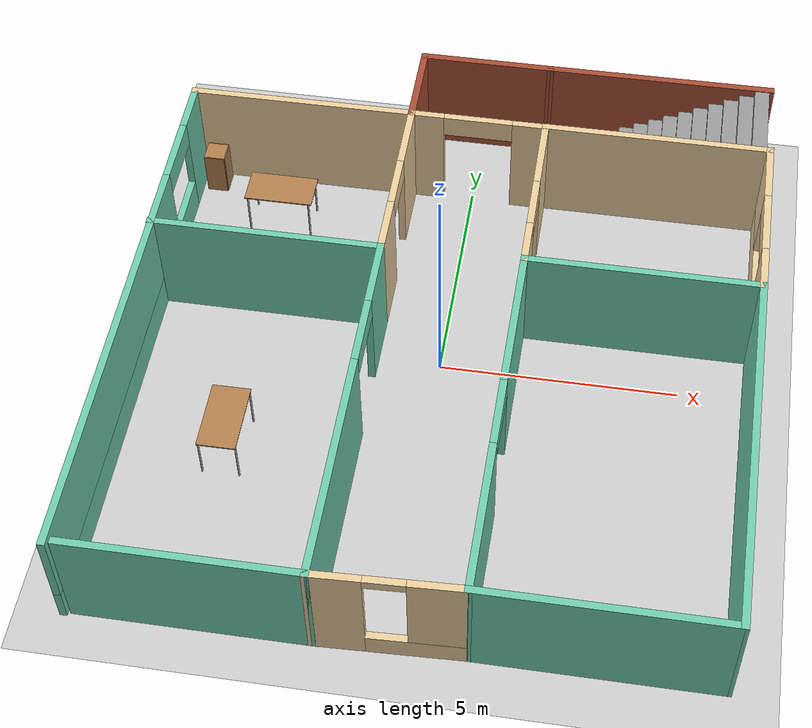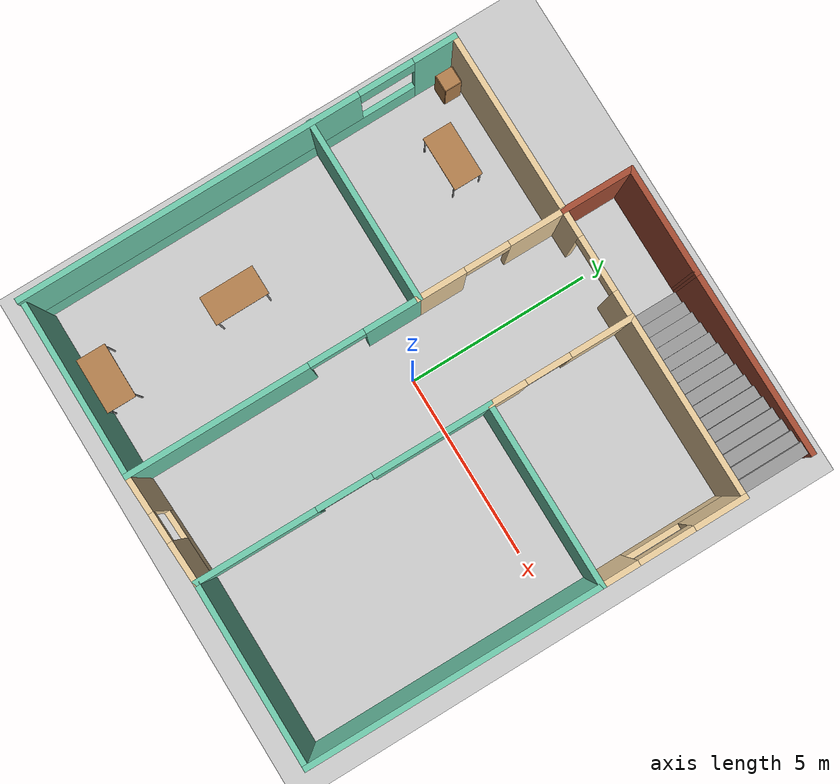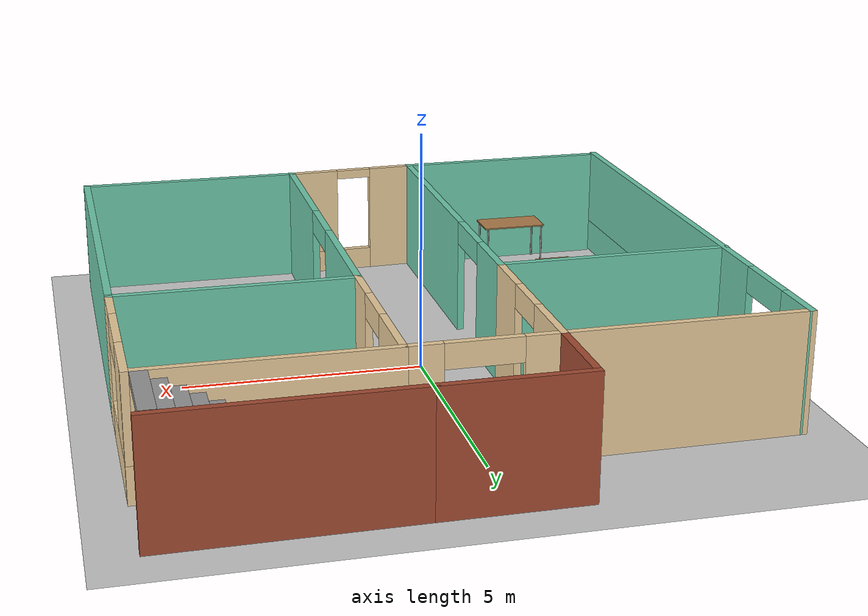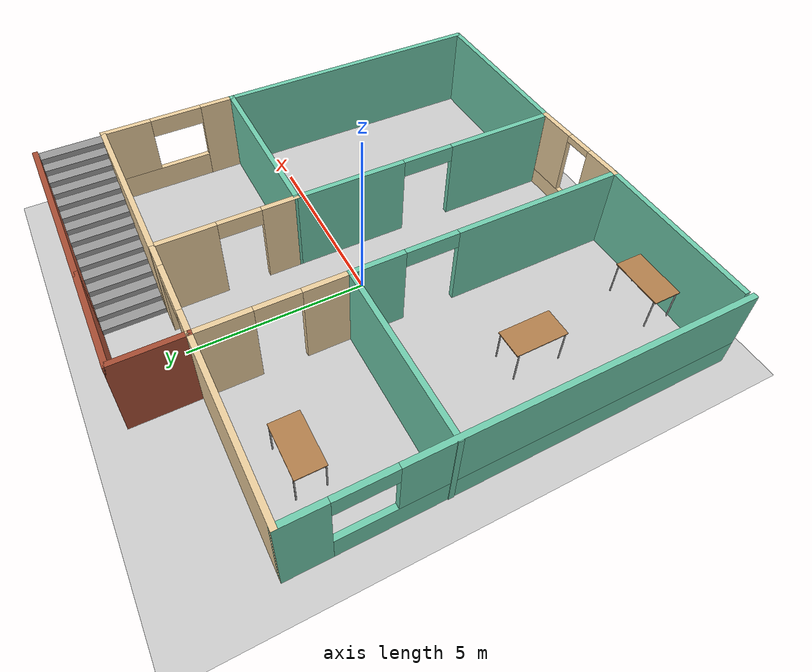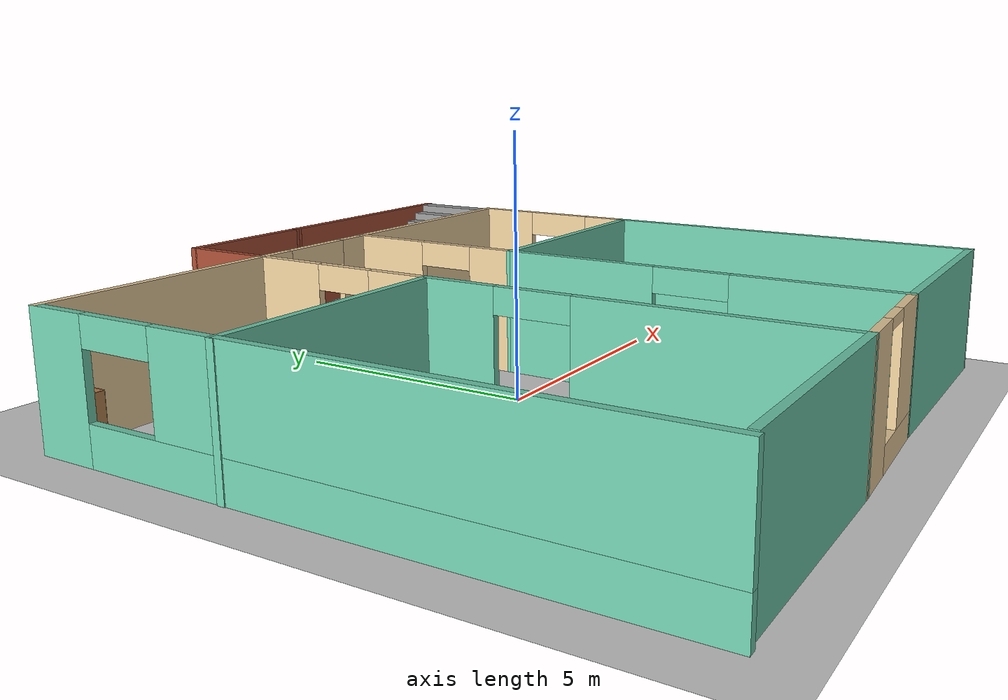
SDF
<sdf version="1.6">
 <world name="default">
  <model name="ground_plane">
   <static>1</static>
   <link name="link">
    <collision name="collision">
     <geometry><plane><normal>0 0 1</normal><size>100 100</size></plane></geometry>
     <surface><friction><ode><mu>100</mu><mu2>50</mu2></ode></friction></surface>
    </collision>
    <visual name="visual">
     <cast_shadows>0</cast_shadows>
     <geometry><plane><normal>0 0 1</normal><size>100 100</size></plane></geometry>
     <material>
      <script><uri>file://media/materials/scripts/gazebo.material</uri><name>Gazebo/Grey</name></script>
     </material>
    </visual>
   </link>
  </model>
  <model name="building">
   <pose>0.088523 -0.033971 0 0 -0 0</pose>
   <link name="Stairs_0">
    <visual name="Stairs_0_Visual_0">
     <pose>1.59394 5.92691 0.083333 0 -0 1.5708</pose>
     <geometry><box><size>1.7 0.320986 0.166667</size></box></geometry>
     <material>
      <script><uri>file://media/materials/scripts/gazebo.material</uri><name>Gazebo/Grey</name></script>
      <ambient>1 1 1 1</ambient>
     </material>
     <meta><layer>0</layer></meta>
    </visual>
    <collision name="Stairs_0_Collision_0">
     <geometry><box><size>1.7 0.320986 0.166667</size></box></geometry>
     <pose>1.59394 5.92691 0.083333 0 -0 1.5708</pose>
    </collision>
    <visual name="Stairs_0_Visual_1">
     <pose>1.91492 5.92691 0.25 0 -0 1.5708</pose>
     <geometry><box><size>1.7 0.320986 0.166667</size></box></geometry>
     <material>
      <script><uri>file://media/materials/scripts/gazebo.material</uri><name>Gazebo/Grey</name></script>
      <ambient>1 1 1 1</ambient>
     </material>
     <meta><layer>0</layer></meta>
    </visual>
    <collision name="Stairs_0_Collision_1">
     <geometry><box><size>1.7 0.320986 0.166667</size></box></geometry>
     <pose>1.91492 5.92691 0.25 0 -0 1.5708</pose>
    </collision>
    <visual name="Stairs_0_Visual_2">
     <pose>2.23591 5.92691 0.416667 0 -0 1.5708</pose>
     <geometry><box><size>1.7 0.320986 0.166667</size></box></geometry>
     <material>
      <script><uri>file://media/materials/scripts/gazebo.material</uri><name>Gazebo/Grey</name></script>
      <ambient>1 1 1 1</ambient>
     </material>
     <meta><layer>0</layer></meta>
    </visual>
    <collision name="Stairs_0_Collision_2">
     <geometry><box><size>1.7 0.320986 0.166667</size></box></geometry>
     <pose>2.23591 5.92691 0.416667 0 -0 1.5708</pose>
    </collision>
    <visual name="Stairs_0_Visual_3">
     <pose>2.55689 5.92691 0.583333 0 -0 1.5708</pose>
     <geometry><box><size>1.7 0.320986 0.166667</size></box></geometry>
     <material>
      <script><uri>file://media/materials/scripts/gazebo.material</uri><name>Gazebo/Grey</name></script>
      <ambient>1 1 1 1</ambient>
     </material>
     <meta><layer>0</layer></meta>
    </visual>
    <collision name="Stairs_0_Collision_3">
     <geometry><box><size>1.7 0.320986 0.166667</size></box></geometry>
     <pose>2.55689 5.92691 0.583333 0 -0 1.5708</pose>
    </collision>
    <visual name="Stairs_0_Visual_4">
     <pose>2.87788 5.92691 0.75 0 -0 1.5708</pose>
     <geometry><box><size>1.7 0.320986 0.166667</size></box></geometry>
     <material>
      <script><uri>file://media/materials/scripts/gazebo.material</uri><name>Gazebo/Grey</name></script>
      <ambient>1 1 1 1</ambient>
     </material>
     <meta><layer>0</layer></meta>
    </visual>
    <collision name="Stairs_0_Collision_4">
     <geometry><box><size>1.7 0.320986 0.166667</size></box></geometry>
     <pose>2.87788 5.92691 0.75 0 -0 1.5708</pose>
    </collision>
    <visual name="Stairs_0_Visual_5">
     <pose>3.19887 5.92691 0.916667 0 -0 1.5708</pose>
     <geometry><box><size>1.7 0.320986 0.166667</size></box></geometry>
     <material>
      <script><uri>file://media/materials/scripts/gazebo.material</uri><name>Gazebo/Grey</name></script>
      <ambient>1 1 1 1</ambient>
     </material>
     <meta><layer>0</layer></meta>
    </visual>
    <collision name="Stairs_0_Collision_5">
     <geometry><box><size>1.7 0.320986 0.166667</size></box></geometry>
     <pose>3.19887 5.92691 0.916667 0 -0 1.5708</pose>
    </collision>
    <visual name="Stairs_0_Visual_6">
     <pose>3.51985 5.92691 1.08333 0 -0 1.5708</pose>
     <geometry><box><size>1.7 0.320986 0.166667</size></box></geometry>
     <material>
      <script><uri>file://media/materials/scripts/gazebo.material</uri><name>Gazebo/Grey</name></script>
      <ambient>1 1 1 1</ambient>
     </material>
     <meta><layer>0</layer></meta>
    </visual>
    <collision name="Stairs_0_Collision_6">
     <geometry><box><size>1.7 0.320986 0.166667</size></box></geometry>
     <pose>3.51985 5.92691 1.08333 0 -0 1.5708</pose>
    </collision>
    <visual name="Stairs_0_Visual_7">
     <pose>3.84084 5.92691 1.25 0 -0 1.5708</pose>
     <geometry><box><size>1.7 0.320986 0.166667</size></box></geometry>
     <material>
      <script><uri>file://media/materials/scripts/gazebo.material</uri><name>Gazebo/Grey</name></script>
      <ambient>1 1 1 1</ambient>
     </material>
     <meta><layer>0</layer></meta>
    </visual>
    <collision name="Stairs_0_Collision_7">
     <geometry><box><size>1.7 0.320986 0.166667</size></box></geometry>
     <pose>3.84084 5.92691 1.25 0 -0 1.5708</pose>
    </collision>
    <visual name="Stairs_0_Visual_8">
     <pose>4.16182 5.92691 1.41667 0 -0 1.5708</pose>
     <geometry><box><size>1.7 0.320986 0.166667</size></box></geometry>
     <material>
      <script><uri>file://media/materials/scripts/gazebo.material</uri><name>Gazebo/Grey</name></script>
      <ambient>1 1 1 1</ambient>
     </material>
     <meta><layer>0</layer></meta>
    </visual>
    <collision name="Stairs_0_Collision_8">
     <geometry><box><size>1.7 0.320986 0.166667</size></box></geometry>
     <pose>4.16182 5.92691 1.41667 0 -0 1.5708</pose>
    </collision>
    <visual name="Stairs_0_Visual_9">
     <pose>4.48281 5.92691 1.58333 0 -0 1.5708</pose>
     <geometry><box><size>1.7 0.320986 0.166667</size></box></geometry>
     <material>
      <script><uri>file://media/materials/scripts/gazebo.material</uri><name>Gazebo/Grey</name></script>
      <ambient>1 1 1 1</ambient>
     </material>
     <meta><layer>0</layer></meta>
    </visual>
    <collision name="Stairs_0_Collision_9">
     <geometry><box><size>1.7 0.320986 0.166667</size></box></geometry>
     <pose>4.48281 5.92691 1.58333 0 -0 1.5708</pose>
    </collision>
    <visual name="Stairs_0_Visual_10">
     <pose>4.8038 5.92691 1.75 0 -0 1.5708</pose>
     <geometry><box><size>1.7 0.320986 0.166667</size></box></geometry>
     <material>
      <script><uri>file://media/materials/scripts/gazebo.material</uri><name>Gazebo/Grey</name></script>
      <ambient>1 1 1 1</ambient>
     </material>
     <meta><layer>0</layer></meta>
    </visual>
    <collision name="Stairs_0_Collision_10">
     <geometry><box><size>1.7 0.320986 0.166667</size></box></geometry>
     <pose>4.8038 5.92691 1.75 0 -0 1.5708</pose>
    </collision>
    <visual name="Stairs_0_Visual_11">
     <pose>5.12478 5.92691 1.91667 0 -0 1.5708</pose>
     <geometry><box><size>1.7 0.320986 0.166667</size></box></geometry>
     <material>
      <script><uri>file://media/materials/scripts/gazebo.material</uri><name>Gazebo/Grey</name></script>
      <ambient>1 1 1 1</ambient>
     </material>
     <meta><layer>0</layer></meta>
    </visual>
    <collision name="Stairs_0_Collision_11">
     <geometry><box><size>1.7 0.320986 0.166667</size></box></geometry>
     <pose>5.12478 5.92691 1.91667 0 -0 1.5708</pose>
    </collision>
    <visual name="Stairs_0_Visual_12">
     <pose>5.44577 5.92691 2.08333 0 -0 1.5708</pose>
     <geometry><box><size>1.7 0.320986 0.166667</size></box></geometry>
     <material>
      <script><uri>file://media/materials/scripts/gazebo.material</uri><name>Gazebo/Grey</name></script>
      <ambient>1 1 1 1</ambient>
     </material>
     <meta><layer>0</layer></meta>
    </visual>
    <collision name="Stairs_0_Collision_12">
     <geometry><box><size>1.7 0.320986 0.166667</size></box></geometry>
     <pose>5.44577 5.92691 2.08333 0 -0 1.5708</pose>
    </collision>
    <visual name="Stairs_0_Visual_13">
     <pose>5.76675 5.92691 2.25 0 -0 1.5708</pose>
     <geometry><box><size>1.7 0.320986 0.166667</size></box></geometry>
     <material>
      <script><uri>file://media/materials/scripts/gazebo.material</uri><name>Gazebo/Grey</name></script>
      <ambient>1 1 1 1</ambient>
     </material>
     <meta><layer>0</layer></meta>
    </visual>
    <collision name="Stairs_0_Collision_13">
     <geometry><box><size>1.7 0.320986 0.166667</size></box></geometry>
     <pose>5.76675 5.92691 2.25 0 -0 1.5708</pose>
    </collision>
    <visual name="Stairs_0_Visual_14">
     <pose>6.08774 5.92691 2.41667 0 -0 1.5708</pose>
     <geometry><box><size>1.7 0.320986 0.166667</size></box></geometry>
     <material>
      <script><uri>file://media/materials/scripts/gazebo.material</uri><name>Gazebo/Grey</name></script>
      <ambient>1 1 1 1</ambient>
     </material>
     <meta><layer>0</layer></meta>
    </visual>
    <collision name="Stairs_0_Collision_14">
     <geometry><box><size>1.7 0.320986 0.166667</size></box></geometry>
     <pose>6.08774 5.92691 2.41667 0 -0 1.5708</pose>
    </collision>
   </link>
   <link name="Wall_0">
    <collision name="Wall_0_Collision">
     <geometry><box><size>3 0.15 2.5</size></box></geometry>
     <pose>0 0 1.25 0 -0 0</pose>
    </collision>
    <visual name="Wall_0_Visual">
     <pose>0 0 1.25 0 -0 0</pose>
     <geometry><box><size>3 0.15 2.5</size></box></geometry>
     <material>
      <script><uri>file://media/materials/scripts/gazebo.material</uri><name>Gazebo/Bricks</name></script>
      <ambient>1 1 1 1</ambient>
     </material>
     <meta><layer>0</layer></meta>
    </visual>
    <pose>-0.046466 6.84416 0 0 -0 3.14159</pose>
   </link>
   <link name="Wall_1">
    <collision name="Wall_1_Collision">
     <geometry><box><size>2 0.15 2.5</size></box></geometry>
     <pose>0 0 1.25 0 -0 0</pose>
    </collision>
    <visual name="Wall_1_Visual">
     <pose>0 0 1.25 0 -0 0</pose>
     <geometry><box><size>2 0.15 2.5</size></box></geometry>
     <material>
      <script><uri>file://media/materials/scripts/gazebo.material</uri><name>Gazebo/Bricks</name></script>
      <ambient>1 1 1 1</ambient>
     </material>
     <meta><layer>0</layer></meta>
    </visual>
    <pose>-1.47147 5.91916 0 0 0 -1.5708</pose>
   </link>
   <link name="Wall_10">
    <collision name="Wall_10_Collision">
     <geometry><box><size>5 0.15 2.5</size></box></geometry>
     <pose>0 0 1.25 0 -0 0</pose>
    </collision>
    <visual name="Wall_10_Visual">
     <pose>0 0 1.25 0 -0 0</pose>
     <geometry><box><size>5 0.15 2.5</size></box></geometry>
     <material>
      <script><uri>file://media/materials/scripts/gazebo.material</uri><name>Gazebo/Grey</name></script>
      <ambient>0.435294 0.796078 0.67451 1</ambient>
     </material>
     <meta><layer>0</layer></meta>
    </visual>
    <pose>-3.90087 1.0402 0 0 -0 3.14159</pose>
   </link>
   <link name="Wall_12">
    <pose>1.47553 3.07898 0 0 -0 1.5708</pose>
    <visual name="Wall_12_Visual_0">
     <pose>-1.47098 0 1.25 0 -0 0</pose>
     <geometry><box><size>1.05804 0.15 2.5</size></box></geometry>
     <material>
      <script><uri>file://media/materials/scripts/gazebo.material</uri><name>Gazebo/Grey</name></script>
      <ambient>0.921569 0.807843 0.615686 1</ambient>
     </material>
     <meta><layer>0</layer></meta>
    </visual>
    <collision name="Wall_12_Collision_0">
     <geometry><box><size>1.05804 0.15 2.5</size></box></geometry>
     <pose>-1.47098 0 1.25 0 -0 0</pose>
    </collision>
    <visual name="Wall_12_Visual_1">
     <pose>1.12902 0 1.25 0 -0 0</pose>
     <geometry><box><size>1.74196 0.15 2.5</size></box></geometry>
     <material>
      <script><uri>file://media/materials/scripts/gazebo.material</uri><name>Gazebo/Grey</name></script>
      <ambient>0.921569 0.807843 0.615686 1</ambient>
     </material>
     <meta><layer>0</layer></meta>
    </visual>
    <collision name="Wall_12_Collision_1">
     <geometry><box><size>1.74196 0.15 2.5</size></box></geometry>
     <pose>1.12902 0 1.25 0 -0 0</pose>
    </collision>
    <visual name="Wall_12_Visual_2">
     <pose>-0.341962 0 2.25 0 -0 0</pose>
     <geometry><box><size>1.2 0.15 0.5</size></box></geometry>
     <material>
      <script><uri>file://media/materials/scripts/gazebo.material</uri><name>Gazebo/Grey</name></script>
      <ambient>0.921569 0.807843 0.615686 1</ambient>
     </material>
     <meta><layer>0</layer></meta>
    </visual>
    <collision name="Wall_12_Collision_2">
     <geometry><box><size>1.2 0.15 0.5</size></box></geometry>
     <pose>-0.341962 0 2.25 0 -0 0</pose>
    </collision>
   </link>
   <link name="Wall_15">
    <collision name="Wall_15_Collision">
     <geometry><box><size>5 0.15 2.5</size></box></geometry>
     <pose>0 0 1.25 0 -0 0</pose>
    </collision>
    <visual name="Wall_15_Visual">
     <pose>0 0 1.25 0 -0 0</pose>
     <geometry><box><size>5 0.15 2.5</size></box></geometry>
     <material>
      <script><uri>file://media/materials/scripts/gazebo.material</uri><name>Gazebo/Grey</name></script>
      <ambient>0.435294 0.796078 0.67451 1</ambient>
     </material>
     <meta><layer>0</layer></meta>
    </visual>
    <pose>3.90053 1.15398 0 0 -0 0</pose>
   </link>
   <link name="Wall_18">
    <pose>-1.47587 -2.8848 0 0 0 -1.5708</pose>
    <visual name="Wall_18_Visual_0">
     <pose>-3.2267 0 1.25 0 -0 0</pose>
     <geometry><box><size>1.54659 0.15 2.5</size></box></geometry>
     <material>
      <script><uri>file://media/materials/scripts/gazebo.material</uri><name>Gazebo/Grey</name></script>
      <ambient>0.435294 0.796078 0.67451 1</ambient>
     </material>
     <meta><layer>0</layer></meta>
    </visual>
    <collision name="Wall_18_Collision_0">
     <geometry><box><size>1.54659 0.15 2.5</size></box></geometry>
     <pose>-3.2267 0 1.25 0 -0 0</pose>
    </collision>
    <visual name="Wall_18_Visual_1">
     <pose>1.5233 0 1.25 0 -0 0</pose>
     <geometry><box><size>4.95341 0.15 2.5</size></box></geometry>
     <material>
      <script><uri>file://media/materials/scripts/gazebo.material</uri><name>Gazebo/Grey</name></script>
      <ambient>0.435294 0.796078 0.67451 1</ambient>
     </material>
     <meta><layer>0</layer></meta>
    </visual>
    <collision name="Wall_18_Collision_1">
     <geometry><box><size>4.95341 0.15 2.5</size></box></geometry>
     <pose>1.5233 0 1.25 0 -0 0</pose>
    </collision>
    <visual name="Wall_18_Visual_2">
     <pose>-1.70341 0 2.25 0 -0 0</pose>
     <geometry><box><size>1.5 0.15 0.5</size></box></geometry>
     <material>
      <script><uri>file://media/materials/scripts/gazebo.material</uri><name>Gazebo/Grey</name></script>
      <ambient>0.435294 0.796078 0.67451 1</ambient>
     </material>
     <meta><layer>0</layer></meta>
    </visual>
    <collision name="Wall_18_Collision_2">
     <geometry><box><size>1.5 0.15 0.5</size></box></geometry>
     <pose>-1.70341 0 2.25 0 -0 0</pose>
    </collision>
   </link>
   <link name="Wall_19">
    <collision name="Wall_19_Collision">
     <geometry><box><size>4.75 0.15 2.5</size></box></geometry>
     <pose>0 0 1.25 0 -0 0</pose>
    </collision>
    <visual name="Wall_19_Visual">
     <pose>0 0 1.25 0 -0 0</pose>
     <geometry><box><size>4.75 0.15 2.5</size></box></geometry>
     <material>
      <script><uri>file://media/materials/scripts/gazebo.material</uri><name>Gazebo/Grey</name></script>
      <ambient>0.435294 0.796078 0.67451 1</ambient>
     </material>
     <meta><layer>0</layer></meta>
    </visual>
    <pose>-3.77587 -6.8098 0 0 -0 3.14159</pose>
   </link>
   <link name="Wall_2">
    <collision name="Wall_2_Collision">
     <geometry><box><size>5 0.15 2.5</size></box></geometry>
     <pose>0 0 1.25 0 -0 0</pose>
    </collision>
    <visual name="Wall_2_Visual">
     <pose>0 0 1.25 0 -0 0</pose>
     <geometry><box><size>5 0.15 2.5</size></box></geometry>
     <material>
      <script><uri>file://media/materials/scripts/gazebo.material</uri><name>Gazebo/Grey</name></script>
      <ambient>0.921569 0.807843 0.615686 1</ambient>
     </material>
     <meta><layer>0</layer></meta>
    </visual>
    <pose>-3.89682 4.98839 0 0 0 -3.13921</pose>
   </link>
   <link name="Wall_21">
    <pose>1.45804 -2.77101 0 0 0 -1.57525</pose>
    <visual name="Wall_21_Visual_0">
     <pose>-2.38457 0 1.25 0 -0 0</pose>
     <geometry><box><size>3.23086 0.15 2.5</size></box></geometry>
     <material>
      <script><uri>file://media/materials/scripts/gazebo.material</uri><name>Gazebo/Grey</name></script>
      <ambient>0.435294 0.796078 0.67451 1</ambient>
     </material>
     <meta><layer>0</layer></meta>
    </visual>
    <collision name="Wall_21_Collision_0">
     <geometry><box><size>3.23086 0.15 2.5</size></box></geometry>
     <pose>-2.38457 0 1.25 0 -0 0</pose>
    </collision>
    <visual name="Wall_21_Visual_1">
     <pose>2.36543 0 1.25 0 -0 0</pose>
     <geometry><box><size>3.26914 0.15 2.5</size></box></geometry>
     <material>
      <script><uri>file://media/materials/scripts/gazebo.material</uri><name>Gazebo/Grey</name></script>
      <ambient>0.435294 0.796078 0.67451 1</ambient>
     </material>
     <meta><layer>0</layer></meta>
    </visual>
    <collision name="Wall_21_Collision_1">
     <geometry><box><size>3.26914 0.15 2.5</size></box></geometry>
     <pose>2.36543 0 1.25 0 -0 0</pose>
    </collision>
    <visual name="Wall_21_Visual_2">
     <pose>-0.019144 0 2.25 0 -0 0</pose>
     <geometry><box><size>1.5 0.15 0.5</size></box></geometry>
     <material>
      <script><uri>file://media/materials/scripts/gazebo.material</uri><name>Gazebo/Grey</name></script>
      <ambient>0.435294 0.796078 0.67451 1</ambient>
     </material>
     <meta><layer>0</layer></meta>
    </visual>
    <collision name="Wall_21_Collision_2">
     <geometry><box><size>1.5 0.15 0.5</size></box></geometry>
     <pose>-0.019144 0 2.25 0 -0 0</pose>
    </collision>
   </link>
   <link name="Wall_24">
    <collision name="Wall_24_Collision">
     <geometry><box><size>5 0.15 2.5</size></box></geometry>
     <pose>0 0 1.25 0 -0 0</pose>
    </collision>
    <visual name="Wall_24_Visual">
     <pose>0 0 1.25 0 -0 0</pose>
     <geometry><box><size>5 0.15 2.5</size></box></geometry>
     <material>
      <script><uri>file://media/materials/scripts/gazebo.material</uri><name>Gazebo/Grey</name></script>
      <ambient>0.921569 0.807843 0.615686 1</ambient>
     </material>
     <meta><layer>0</layer></meta>
    </visual>
    <pose>3.90053 5.00398 0 0 -0 3.14159</pose>
   </link>
   <link name="Wall_26">
    <pose>6.32553 3.07898 0 0 -0 1.5708</pose>
    <visual name="Wall_26_Visual_0">
     <pose>-1.4666 0 1.25 0 -0 0</pose>
     <geometry><box><size>1.0668 0.15 2.5</size></box></geometry>
     <material>
      <script><uri>file://media/materials/scripts/gazebo.material</uri><name>Gazebo/Grey</name></script>
      <ambient>0.921569 0.807843 0.615686 1</ambient>
     </material>
     <meta><layer>0</layer></meta>
    </visual>
    <collision name="Wall_26_Collision_0">
     <geometry><box><size>1.0668 0.15 2.5</size></box></geometry>
     <pose>-1.4666 0 1.25 0 -0 0</pose>
    </collision>
    <visual name="Wall_26_Visual_1">
     <pose>0.533401 0 0.375 0 -0 0</pose>
     <geometry><box><size>2.9332 0.15 0.75</size></box></geometry>
     <material>
      <script><uri>file://media/materials/scripts/gazebo.material</uri><name>Gazebo/Grey</name></script>
      <ambient>0.921569 0.807843 0.615686 1</ambient>
     </material>
     <meta><layer>0</layer></meta>
    </visual>
    <collision name="Wall_26_Collision_1">
     <geometry><box><size>2.9332 0.15 0.75</size></box></geometry>
     <pose>0.533401 0 0.375 0 -0 0</pose>
    </collision>
    <visual name="Wall_26_Visual_2">
     <pose>1.2834 0 1.625 0 -0 0</pose>
     <geometry><box><size>1.4332 0.15 1.75</size></box></geometry>
     <material>
      <script><uri>file://media/materials/scripts/gazebo.material</uri><name>Gazebo/Grey</name></script>
      <ambient>0.921569 0.807843 0.615686 1</ambient>
     </material>
     <meta><layer>0</layer></meta>
    </visual>
    <collision name="Wall_26_Collision_2">
     <geometry><box><size>1.4332 0.15 1.75</size></box></geometry>
     <pose>1.2834 0 1.625 0 -0 0</pose>
    </collision>
    <visual name="Wall_26_Visual_3">
     <pose>-0.183198 0 2.225 0 -0 0</pose>
     <geometry><box><size>1.5 0.15 0.55</size></box></geometry>
     <material>
      <script><uri>file://media/materials/scripts/gazebo.material</uri><name>Gazebo/Grey</name></script>
      <ambient>0.921569 0.807843 0.615686 1</ambient>
     </material>
     <meta><layer>0</layer></meta>
    </visual>
    <collision name="Wall_26_Collision_3">
     <geometry><box><size>1.5 0.15 0.55</size></box></geometry>
     <pose>-0.183198 0 2.225 0 -0 0</pose>
    </collision>
   </link>
   <link name="Wall_28">
    <collision name="Wall_28_Collision">
     <geometry><box><size>5 0.15 2.5</size></box></geometry>
     <pose>0 0 1.25 0 -0 0</pose>
    </collision>
    <visual name="Wall_28_Visual">
     <pose>0 0 1.25 0 -0 0</pose>
     <geometry><box><size>5 0.15 2.5</size></box></geometry>
     <material>
      <script><uri>file://media/materials/scripts/gazebo.material</uri><name>Gazebo/Grey</name></script>
      <ambient>0.435294 0.796078 0.67451 1</ambient>
     </material>
     <meta><layer>0</layer></meta>
    </visual>
    <pose>3.86555 -6.69602 0 0 -0 0</pose>
   </link>
   <link name="Wall_3">
    <pose>-6.29817 -0.942386 0 0 0 -1.56675</pose>
    <visual name="Wall_3_Visual_0">
     <pose>-5.39979 0 1.25 0 -0 0</pose>
     <geometry><box><size>1.20042 0.15 2.5</size></box></geometry>
     <material>
      <script><uri>file://media/materials/scripts/gazebo.material</uri><name>Gazebo/Grey</name></script>
      <ambient>0.435294 0.796078 0.67451 1</ambient>
     </material>
     <meta><layer>0</layer></meta>
    </visual>
    <collision name="Wall_3_Collision_0">
     <geometry><box><size>1.20042 0.15 2.5</size></box></geometry>
     <pose>-5.39979 0 1.25 0 -0 0</pose>
    </collision>
    <visual name="Wall_3_Visual_1">
     <pose>0.600208 0 0.375 0 -0 0</pose>
     <geometry><box><size>10.7996 0.15 0.75</size></box></geometry>
     <material>
      <script><uri>file://media/materials/scripts/gazebo.material</uri><name>Gazebo/Grey</name></script>
      <ambient>0.435294 0.796078 0.67451 1</ambient>
     </material>
     <meta><layer>0</layer></meta>
    </visual>
    <collision name="Wall_3_Collision_1">
     <geometry><box><size>10.7996 0.15 0.75</size></box></geometry>
     <pose>0.600208 0 0.375 0 -0 0</pose>
    </collision>
    <visual name="Wall_3_Visual_2">
     <pose>1.35021 0 1.625 0 -0 0</pose>
     <geometry><box><size>9.29959 0.15 1.75</size></box></geometry>
     <material>
      <script><uri>file://media/materials/scripts/gazebo.material</uri><name>Gazebo/Grey</name></script>
      <ambient>0.435294 0.796078 0.67451 1</ambient>
     </material>
     <meta><layer>0</layer></meta>
    </visual>
    <collision name="Wall_3_Collision_2">
     <geometry><box><size>9.29959 0.15 1.75</size></box></geometry>
     <pose>1.35021 0 1.625 0 -0 0</pose>
    </collision>
    <visual name="Wall_3_Visual_3">
     <pose>-4.04959 0 2.225 0 -0 0</pose>
     <geometry><box><size>1.5 0.15 0.55</size></box></geometry>
     <material>
      <script><uri>file://media/materials/scripts/gazebo.material</uri><name>Gazebo/Grey</name></script>
      <ambient>0.435294 0.796078 0.67451 1</ambient>
     </material>
     <meta><layer>0</layer></meta>
    </visual>
    <collision name="Wall_3_Collision_3">
     <geometry><box><size>1.5 0.15 0.55</size></box></geometry>
     <pose>-4.04959 0 2.225 0 -0 0</pose>
    </collision>
   </link>
   <link name="Wall_30">
    <collision name="Wall_30_Collision">
     <geometry><box><size>8.00008 0.15 2.5</size></box></geometry>
     <pose>0 0 1.25 0 -0 0</pose>
    </collision>
    <visual name="Wall_30_Visual">
     <pose>0 0 1.25 0 -0 0</pose>
     <geometry><box><size>8.00008 0.15 2.5</size></box></geometry>
     <material>
      <script><uri>file://media/materials/scripts/gazebo.material</uri><name>Gazebo/Grey</name></script>
      <ambient>0.435294 0.796078 0.67451 1</ambient>
     </material>
     <meta><layer>0</layer></meta>
    </visual>
    <pose>6.30804 -2.77101 0 0 0 -1.57525</pose>
   </link>
   <link name="Wall_32">
    <pose>-0.017657 -6.75291 0 0 -0 0.038996</pose>
    <visual name="Wall_32_Visual_0">
     <pose>-0.987911 0 1.25 0 -0 0</pose>
     <geometry><box><size>1.09282 0.15 2.5</size></box></geometry>
     <material>
      <script><uri>file://media/materials/scripts/gazebo.material</uri><name>Gazebo/Grey</name></script>
      <ambient>0.921569 0.807843 0.615686 1</ambient>
     </material>
     <meta><layer>0</layer></meta>
    </visual>
    <collision name="Wall_32_Collision_0">
     <geometry><box><size>1.09282 0.15 2.5</size></box></geometry>
     <pose>-0.987911 0 1.25 0 -0 0</pose>
    </collision>
    <visual name="Wall_32_Visual_1">
     <pose>0.546409 0 0.25 0 -0 0</pose>
     <geometry><box><size>1.97582 0.15 0.5</size></box></geometry>
     <material>
      <script><uri>file://media/materials/scripts/gazebo.material</uri><name>Gazebo/Grey</name></script>
      <ambient>0.921569 0.807843 0.615686 1</ambient>
     </material>
     <meta><layer>0</layer></meta>
    </visual>
    <collision name="Wall_32_Collision_1">
     <geometry><box><size>1.97582 0.15 0.5</size></box></geometry>
     <pose>0.546409 0 0.25 0 -0 0</pose>
    </collision>
    <visual name="Wall_32_Visual_2">
     <pose>0.946409 0 1.5 0 -0 0</pose>
     <geometry><box><size>1.17582 0.15 2</size></box></geometry>
     <material>
      <script><uri>file://media/materials/scripts/gazebo.material</uri><name>Gazebo/Grey</name></script>
      <ambient>0.921569 0.807843 0.615686 1</ambient>
     </material>
     <meta><layer>0</layer></meta>
    </visual>
    <collision name="Wall_32_Collision_2">
     <geometry><box><size>1.17582 0.15 2</size></box></geometry>
     <pose>0.946409 0 1.5 0 -0 0</pose>
    </collision>
    <visual name="Wall_32_Visual_3">
     <pose>-0.041502 0 2.4 0 -0 0</pose>
     <geometry><box><size>0.8 0.15 0.2</size></box></geometry>
     <material>
      <script><uri>file://media/materials/scripts/gazebo.material</uri><name>Gazebo/Grey</name></script>
      <ambient>0.921569 0.807843 0.615686 1</ambient>
     </material>
     <meta><layer>0</layer></meta>
    </visual>
    <collision name="Wall_32_Collision_3">
     <geometry><box><size>0.8 0.15 0.2</size></box></geometry>
     <pose>-0.041502 0 2.4 0 -0 0</pose>
    </collision>
   </link>
   <link name="Wall_6">
    <collision name="Wall_6_Collision">
     <geometry><box><size>5.04632 0.15 2.5</size></box></geometry>
     <pose>0 0 1.25 0 -0 0</pose>
    </collision>
    <visual name="Wall_6_Visual">
     <pose>0 0 1.25 0 -0 0</pose>
     <geometry><box><size>5.04632 0.15 2.5</size></box></geometry>
     <material>
      <script><uri>file://media/materials/scripts/gazebo.material</uri><name>Gazebo/Bricks</name></script>
      <ambient>1 1 1 1</ambient>
     </material>
     <meta><layer>0</layer></meta>
    </visual>
    <pose>3.82666 6.85572 0 0 0 -3.13687</pose>
   </link>
   <link name="Wall_8">
    <pose>-0.046466 4.99416 0 0 -0 3.14159</pose>
    <visual name="Wall_8_Visual_0">
     <pose>-1.14822 0 1.25 0 -0 0</pose>
     <geometry><box><size>0.703569 0.15 2.5</size></box></geometry>
     <material>
      <script><uri>file://media/materials/scripts/gazebo.material</uri><name>Gazebo/Grey</name></script>
      <ambient>0.921569 0.807843 0.615686 1</ambient>
     </material>
     <meta><layer>0</layer></meta>
    </visual>
    <collision name="Wall_8_Collision_0">
     <geometry><box><size>0.703569 0.15 2.5</size></box></geometry>
     <pose>-1.14822 0 1.25 0 -0 0</pose>
    </collision>
    <visual name="Wall_8_Visual_1">
     <pose>1.10178 0 1.25 0 -0 0</pose>
     <geometry><box><size>0.796431 0.15 2.5</size></box></geometry>
     <material>
      <script><uri>file://media/materials/scripts/gazebo.material</uri><name>Gazebo/Grey</name></script>
      <ambient>0.921569 0.807843 0.615686 1</ambient>
     </material>
     <meta><layer>0</layer></meta>
    </visual>
    <collision name="Wall_8_Collision_1">
     <geometry><box><size>0.796431 0.15 2.5</size></box></geometry>
     <pose>1.10178 0 1.25 0 -0 0</pose>
    </collision>
    <visual name="Wall_8_Visual_2">
     <pose>-0.046431 0 2.25 0 -0 0</pose>
     <geometry><box><size>1.5 0.15 0.5</size></box></geometry>
     <material>
      <script><uri>file://media/materials/scripts/gazebo.material</uri><name>Gazebo/Grey</name></script>
      <ambient>0.921569 0.807843 0.615686 1</ambient>
     </material>
     <meta><layer>0</layer></meta>
    </visual>
    <collision name="Wall_8_Collision_2">
     <geometry><box><size>1.5 0.15 0.5</size></box></geometry>
     <pose>-0.046431 0 2.25 0 -0 0</pose>
    </collision>
   </link>
   <link name="Wall_9">
    <pose>-1.47367 3.01718 0 0 0 -1.57191</pose>
    <visual name="Wall_9_Visual_0">
     <pose>-1.26717 0 1.25 0 -0 0</pose>
     <geometry><box><size>1.56963 0.15 2.5</size></box></geometry>
     <material>
      <script><uri>file://media/materials/scripts/gazebo.material</uri><name>Gazebo/Grey</name></script>
      <ambient>0.921569 0.807843 0.615686 1</ambient>
     </material>
     <meta><layer>0</layer></meta>
    </visual>
    <collision name="Wall_9_Collision_0">
     <geometry><box><size>1.56963 0.15 2.5</size></box></geometry>
     <pose>-1.26717 0 1.25 0 -0 0</pose>
    </collision>
    <visual name="Wall_9_Visual_1">
     <pose>1.38481 0 1.25 0 -0 0</pose>
     <geometry><box><size>1.33434 0.15 2.5</size></box></geometry>
     <material>
      <script><uri>file://media/materials/scripts/gazebo.material</uri><name>Gazebo/Grey</name></script>
      <ambient>0.921569 0.807843 0.615686 1</ambient>
     </material>
     <meta><layer>0</layer></meta>
    </visual>
    <collision name="Wall_9_Collision_1">
     <geometry><box><size>1.33434 0.15 2.5</size></box></geometry>
     <pose>1.38481 0 1.25 0 -0 0</pose>
    </collision>
    <visual name="Wall_9_Visual_2">
     <pose>0.117646 0 2.25 0 -0 0</pose>
     <geometry><box><size>1.2 0.15 0.5</size></box></geometry>
     <material>
      <script><uri>file://media/materials/scripts/gazebo.material</uri><name>Gazebo/Grey</name></script>
      <ambient>0.921569 0.807843 0.615686 1</ambient>
     </material>
     <meta><layer>0</layer></meta>
    </visual>
    <collision name="Wall_9_Collision_2">
     <geometry><box><size>1.2 0.15 0.5</size></box></geometry>
     <pose>0.117646 0 2.25 0 -0 0</pose>
    </collision>
   </link>
   <static>1</static>
  </model>
  <model name="table">
   <static>1</static>
   <link name="link">
    <collision name="surface">
     <pose>0 0 1 0 -0 0</pose>
     <geometry><box><size>1.5 0.8 0.03</size></box></geometry>
     <surface><friction><ode><mu>0.6</mu><mu2>0.6</mu2></ode></friction></surface>
    </collision>
    <visual name="visual1">
     <pose>0 0 1 0 -0 0</pose>
     <geometry><box><size>1.5 0.8 0.03</size></box></geometry>
     <material>
      <script><uri>file://media/materials/scripts/gazebo.material</uri><name>Gazebo/Wood</name></script>
     </material>
    </visual>
    <collision name="front_left_leg">
     <pose>0.68 0.38 0.5 0 -0 0</pose>
     <geometry><cylinder><radius>0.02</radius><length>1</length></cylinder></geometry>
    </collision>
    <visual name="front_left_leg">
     <pose>0.68 0.38 0.5 0 -0 0</pose>
     <geometry><cylinder><radius>0.02</radius><length>1</length></cylinder></geometry>
     <material>
      <script><uri>file://media/materials/scripts/gazebo.material</uri><name>Gazebo/Grey</name></script>
     </material>
    </visual>
    <collision name="front_right_leg">
     <pose>0.68 -0.38 0.5 0 -0 0</pose>
     <geometry><cylinder><radius>0.02</radius><length>1</length></cylinder></geometry>
    </collision>
    <visual name="front_right_leg">
     <pose>0.68 -0.38 0.5 0 -0 0</pose>
     <geometry><cylinder><radius>0.02</radius><length>1</length></cylinder></geometry>
     <material>
      <script><uri>file://media/materials/scripts/gazebo.material</uri><name>Gazebo/Grey</name></script>
     </material>
    </visual>
    <collision name="back_right_leg">
     <pose>-0.68 -0.38 0.5 0 -0 0</pose>
     <geometry><cylinder><radius>0.02</radius><length>1</length></cylinder></geometry>
    </collision>
    <visual name="back_right_leg">
     <pose>-0.68 -0.38 0.5 0 -0 0</pose>
     <geometry><cylinder><radius>0.02</radius><length>1</length></cylinder></geometry>
     <material>
      <script><uri>file://media/materials/scripts/gazebo.material</uri><name>Gazebo/Grey</name></script>
     </material>
    </visual>
    <collision name="back_left_leg">
     <pose>-0.68 0.38 0.5 0 -0 0</pose>
     <geometry><cylinder><radius>0.02</radius><length>1</length></cylinder></geometry>
    </collision>
    <visual name="back_left_leg">
     <pose>-0.68 0.38 0.5 0 -0 0</pose>
     <geometry><cylinder><radius>0.02</radius><length>1</length></cylinder></geometry>
     <material>
      <script><uri>file://media/materials/scripts/gazebo.material</uri><name>Gazebo/Grey</name></script>
     </material>
    </visual>
   </link>
   <pose>-3.97426 -2.65742 0 0 0 -1.56502</pose>
  </model>
  <model name="cabinet">
   <static>1</static>
   <link name="cabinet_bottom_plate">
    <inertial>
     <pose>0 0 -1 0 -0 0</pose>
     <inertia><ixx>2.05</ixx><ixy>0</ixy><ixz>0</ixz><iyy>2.05</iyy><iyz>0</iyz><izz>2.05</izz></inertia>
     <mass>25</mass>
    </inertial>
    <collision name="cabinet_bottom_plate_geom">
     <pose>0 0 0.01 0 -0 0</pose>
     <geometry><box><size>0.45 0.45 0.02</size></box></geometry>
    </collision>
    <visual name="cabinet_bottom_plate_geom_visual">
     <pose>0 0 0.01 0 -0 0</pose>
     <geometry><box><size>0.45 0.45 0.02</size></box></geometry>
     <material>
      <script><uri>file://media/materials/scripts/gazebo.material</uri><name>Gazebo/Wood</name></script>
     </material>
    </visual>
    <collision name="cabinet_bottom_plate_geom_cabinet_back_plate">
     <pose>0.235 0 0.51 0 -0 0</pose>
     <geometry><box><size>0.02 0.45 1.02</size></box></geometry>
    </collision>
    <visual name="cabinet_bottom_plate_geom_cabinet_back_plate_visual">
     <pose>0.235 0 0.51 0 -0 0</pose>
     <geometry><box><size>0.02 0.45 1.02</size></box></geometry>
     <material>
      <script><uri>file://media/materials/scripts/gazebo.material</uri><name>Gazebo/Wood</name></script>
     </material>
    </visual>
    <collision name="cabinet_bottom_plate_geom_cabinet_left_plate">
     <pose>0 0.235 0.51 0 -0 0</pose>
     <geometry><box><size>0.45 0.02 1.02</size></box></geometry>
    </collision>
    <visual name="cabinet_bottom_plate_geom_cabinet_left_plate_visual">
     <pose>0 0.235 0.51 0 -0 0</pose>
     <geometry><box><size>0.45 0.02 1.02</size></box></geometry>
     <material>
      <script><uri>file://media/materials/scripts/gazebo.material</uri><name>Gazebo/Wood</name></script>
     </material>
    </visual>
    <collision name="cabinet_bottom_plate_geom_cabinet_middle_plate">
     <pose>0 0 0.51 0 -0 0</pose>
     <geometry><box><size>0.45 0.45 0.02</size></box></geometry>
    </collision>
    <visual name="cabinet_bottom_plate_geom_cabinet_middle_plate_visual">
     <pose>0 0 0.51 0 -0 0</pose>
     <geometry><box><size>0.45 0.45 0.02</size></box></geometry>
     <material>
      <script><uri>file://media/materials/scripts/gazebo.material</uri><name>Gazebo/Wood</name></script>
     </material>
    </visual>
    <collision name="cabinet_bottom_plate_geom_cabinet_right_plate">
     <pose>0 -0.235 0.51 0 -0 0</pose>
     <geometry><box><size>0.45 0.02 1.02</size></box></geometry>
    </collision>
    <visual name="cabinet_bottom_plate_geom_cabinet_right_plate_visual">
     <pose>0 -0.235 0.51 0 -0 0</pose>
     <geometry><box><size>0.45 0.02 1.02</size></box></geometry>
     <material>
      <script><uri>file://media/materials/scripts/gazebo.material</uri><name>Gazebo/Wood</name></script>
     </material>
    </visual>
    <collision name="cabinet_bottom_plate_geom_cabinet_top_plate">
     <pose>0 0 1.01 0 -0 0</pose>
     <geometry><box><size>0.45 0.45 0.02</size></box></geometry>
    </collision>
    <visual name="cabinet_bottom_plate_geom_cabinet_top_plate_visual">
     <pose>0 0 1.01 0 -0 0</pose>
     <geometry><box><size>0.45 0.45 0.02</size></box></geometry>
     <material>
      <script><uri>file://media/materials/scripts/gazebo.material</uri><name>Gazebo/Wood</name></script>
     </material>
    </visual>
   </link>
   <pose>-5.82513 4.58513 0 0 -0 0</pose>
  </model>
  <model name="table_1">
   <static>1</static>
   <link name="link">
    <collision name="surface">
     <pose>0 0 1 0 -0 0</pose>
     <geometry><box><size>1.5 0.8 0.03</size></box></geometry>
     <surface><friction><ode><mu>0.6</mu><mu2>0.6</mu2></ode></friction></surface>
    </collision>
    <visual name="visual1">
     <pose>0 0 1 0 -0 0</pose>
     <geometry><box><size>1.5 0.8 0.03</size></box></geometry>
     <material>
      <script><uri>file://media/materials/scripts/gazebo.material</uri><name>Gazebo/Wood</name></script>
     </material>
    </visual>
    <collision name="front_left_leg">
     <pose>0.68 0.38 0.5 0 -0 0</pose>
     <geometry><cylinder><radius>0.02</radius><length>1</length></cylinder></geometry>
    </collision>
    <visual name="front_left_leg">
     <pose>0.68 0.38 0.5 0 -0 0</pose>
     <geometry><cylinder><radius>0.02</radius><length>1</length></cylinder></geometry>
     <material>
      <script><uri>file://media/materials/scripts/gazebo.material</uri><name>Gazebo/Grey</name></script>
     </material>
    </visual>
    <collision name="front_right_leg">
     <pose>0.68 -0.38 0.5 0 -0 0</pose>
     <geometry><cylinder><radius>0.02</radius><length>1</length></cylinder></geometry>
    </collision>
    <visual name="front_right_leg">
     <pose>0.68 -0.38 0.5 0 -0 0</pose>
     <geometry><cylinder><radius>0.02</radius><length>1</length></cylinder></geometry>
     <material>
      <script><uri>file://media/materials/scripts/gazebo.material</uri><name>Gazebo/Grey</name></script>
     </material>
    </visual>
    <collision name="back_right_leg">
     <pose>-0.68 -0.38 0.5 0 -0 0</pose>
     <geometry><cylinder><radius>0.02</radius><length>1</length></cylinder></geometry>
    </collision>
    <visual name="back_right_leg">
     <pose>-0.68 -0.38 0.5 0 -0 0</pose>
     <geometry><cylinder><radius>0.02</radius><length>1</length></cylinder></geometry>
     <material>
      <script><uri>file://media/materials/scripts/gazebo.material</uri><name>Gazebo/Grey</name></script>
     </material>
    </visual>
    <collision name="back_left_leg">
     <pose>-0.68 0.38 0.5 0 -0 0</pose>
     <geometry><cylinder><radius>0.02</radius><length>1</length></cylinder></geometry>
    </collision>
    <visual name="back_left_leg">
     <pose>-0.68 0.38 0.5 0 -0 0</pose>
     <geometry><cylinder><radius>0.02</radius><length>1</length></cylinder></geometry>
     <material>
      <script><uri>file://media/materials/scripts/gazebo.material</uri><name>Gazebo/Grey</name></script>
     </material>
    </visual>
   </link>
   <pose>-4.12936 3.66509 0 0 -0 0</pose>
  </model>
  <model name="table_4">
   <static>1</static>
   <link name="link">
    <collision name="surface">
     <pose>0 0 1 0 -0 0</pose>
     <geometry><box><size>1.5 0.8 0.03</size></box></geometry>
     <surface><friction><ode><mu>0.6</mu><mu2>0.6</mu2></ode></friction></surface>
    </collision>
    <visual name="visual1">
     <pose>0 0 1 0 -0 0</pose>
     <geometry><box><size>1.5 0.8 0.03</size></box></geometry>
     <material>
      <script><uri>file://media/materials/scripts/gazebo.material</uri><name>Gazebo/Wood</name></script>
     </material>
    </visual>
    <collision name="front_left_leg">
     <pose>0.68 0.38 0.5 0 -0 0</pose>
     <geometry><cylinder><radius>0.02</radius><length>1</length></cylinder></geometry>
    </collision>
    <visual name="front_left_leg">
     <pose>0.68 0.38 0.5 0 -0 0</pose>
     <geometry><cylinder><radius>0.02</radius><length>1</length></cylinder></geometry>
     <material>
      <script><uri>file://media/materials/scripts/gazebo.material</uri><name>Gazebo/Grey</name></script>
     </material>
    </visual>
    <collision name="front_right_leg">
     <pose>0.68 -0.38 0.5 0 -0 0</pose>
     <geometry><cylinder><radius>0.02</radius><length>1</length></cylinder></geometry>
    </collision>
    <visual name="front_right_leg">
     <pose>0.68 -0.38 0.5 0 -0 0</pose>
     <geometry><cylinder><radius>0.02</radius><length>1</length></cylinder></geometry>
     <material>
      <script><uri>file://media/materials/scripts/gazebo.material</uri><name>Gazebo/Grey</name></script>
     </material>
    </visual>
    <collision name="back_right_leg">
     <pose>-0.68 -0.38 0.5 0 -0 0</pose>
     <geometry><cylinder><radius>0.02</radius><length>1</length></cylinder></geometry>
    </collision>
    <visual name="back_right_leg">
     <pose>-0.68 -0.38 0.5 0 -0 0</pose>
     <geometry><cylinder><radius>0.02</radius><length>1</length></cylinder></geometry>
     <material>
      <script><uri>file://media/materials/scripts/gazebo.material</uri><name>Gazebo/Grey</name></script>
     </material>
    </visual>
    <collision name="back_left_leg">
     <pose>-0.68 0.38 0.5 0 -0 0</pose>
     <geometry><cylinder><radius>0.02</radius><length>1</length></cylinder></geometry>
    </collision>
    <visual name="back_left_leg">
     <pose>-0.68 0.38 0.5 0 -0 0</pose>
     <geometry><cylinder><radius>0.02</radius><length>1</length></cylinder></geometry>
     <material>
      <script><uri>file://media/materials/scripts/gazebo.material</uri><name>Gazebo/Grey</name></script>
     </material>
    </visual>
   </link>
   <pose>-3.85573 -6.33669 0 0 -0 0</pose>
  </model>
 </world>
</sdf>
